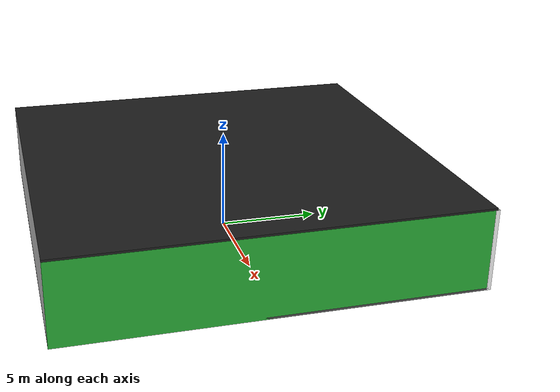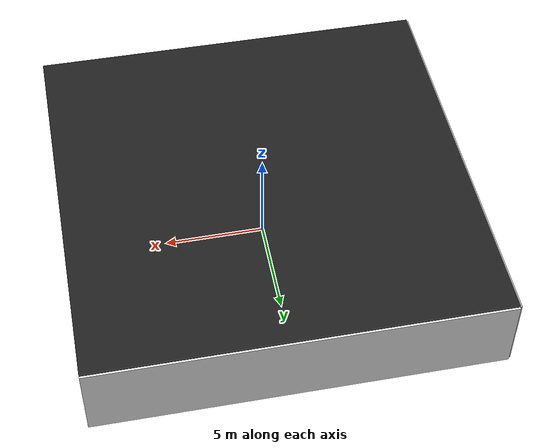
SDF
<sdf version="1.4">
 <world name="default">
  <physics type="ode">
   <max_step_size>0.001</max_step_size>
   <real_time_factor>1</real_time_factor>
   <real_time_update_rate>1000</real_time_update_rate>
   <gravity>0 0 -9.8</gravity>
  </physics>
  <scene><ambient>0.4 0.4 0.4 1</ambient><background>0.7 0.7 0.7 1</background><shadows>1</shadows></scene>
  <model name="Surrounding">
   <static>1</static>
   <link name="Ceiling">
    <collision name="Ceiling_Collision"><geometry><box><size>20 20 0.1</size></box></geometry></collision>
    <visual name="Ceiling_Visual">
     <geometry><box><size>20 20 0.1</size></box></geometry>
     <material>
      <script><uri>file://media/materials/scripts/gazebo.material</uri><name>Gazebo/Black</name></script>
     </material>
    </visual>
    <pose>0 0 4.05 0 0 0</pose>
   </link>
   <link name="Wall_South">
    <collision name="Wall_South_Collision">
     <geometry><box><size>20 0 4</size></box></geometry>
     <pose>0 0 2 0 -0 0</pose>
    </collision>
    <visual name="Wall_South_Visual">
     <pose>0 0 2 0 -0 0</pose>
     <geometry><box><size>20 0 4</size></box></geometry>
     <material>
      <script><uri>file://media/materials/scripts/gazebo.material</uri><name>Gazebo/Pioneer2Body</name></script>
     </material>
    </visual>
    <velocity_decay><linear>0</linear><angular>0</angular></velocity_decay>
    <pose>0 -10 0 0 -0 0</pose>
   </link>
   <link name="Wall_East">
    <collision name="Wall_21_Collision">
     <geometry><box><size>20 0 4</size></box></geometry>
     <pose>0 0 2 0 -0 0</pose>
    </collision>
    <visual name="Wall_21_Visual">
     <pose>0 0 2 0 -0 0</pose>
     <geometry><box><size>20 0 4</size></box></geometry>
     <material>
      <script><uri>file://media/materials/scripts/gazebo.material</uri><name>Gazebo/GreenGlow</name></script>
     </material>
    </visual>
    <velocity_decay><linear>0</linear><angular>0</angular></velocity_decay>
    <pose>10 0 0 0 -0 1.5708</pose>
   </link>
   <link name="Wall_North">
    <collision name="Wall_22_Collision">
     <geometry><box><size>20 0.2 4</size></box></geometry>
     <pose>0 0 2 0 -0 0</pose>
    </collision>
    <visual name="Wall_22_Visual">
     <pose>0 0 2 0 -0 0</pose>
     <geometry><box><size>20 0.2 4</size></box></geometry>
     <material>
      <script><uri>file://media/materials/scripts/gazebo.material</uri><name>Gazebo/White</name></script>
     </material>
    </visual>
    <velocity_decay><linear>0</linear><angular>0</angular></velocity_decay>
    <pose>0 10 0 0 -0 0</pose>
   </link>
   <link name="Wall_West">
    <collision name="Wall_23_Collision">
     <geometry><box><size>20 0.2 4</size></box></geometry>
     <pose>0 0 2 0 -0 0</pose>
    </collision>
    <visual name="Wall_23_Visual">
     <pose>0 0 2 0 -0 0</pose>
     <geometry><box><size>20 0.2 4</size></box></geometry>
     <material>
      <script><uri>file://media/materials/scripts/gazebo.material</uri><name>Gazebo/Pioneer2Body</name></script>
     </material>
    </visual>
    <velocity_decay><linear>0</linear><angular>0</angular></velocity_decay>
    <pose>-10 0 0 0 0 -1.5708</pose>
   </link>
   <link name="Ground_link">
    <collision name="collision">
     <pose>0 0 .05 0 -0 0</pose>
     <geometry><box><size>20 20 0.1</size></box></geometry>
    </collision>
    <visual name="visual">
     <pose>0 0 .05 0 -0 0</pose>
     <geometry><box><size>20 20 0.1</size></box></geometry>
     <material>
      <script><uri>file://media/materials/scripts/gazebo.material</uri><name>Gazebo/DarkGrey</name></script>
     </material>
    </visual>
   </link>
   <static>1</static>
  </model>
  <spherical_coordinates>
   <surface_model>EARTH_WGS84</surface_model>
   <latitude_deg>0</latitude_deg>
   <longitude_deg>0</longitude_deg>
   <elevation>0</elevation>
   <heading_deg>0</heading_deg>
  </spherical_coordinates>
  <light name="lightball_0" type="diffuse">
   <diffuse>0.8 0.8 0.8 1</diffuse>
   <specular>0.2 0.2 0.2 1</specular>
   <attenuation>
    <range>100</range>
    <constant>0.7</constant>
    <linear>0.01</linear>
    <quadratic>0.001</quadratic>
   </attenuation>
   <direction>-0.5 0.1 -0.9</direction>
   <pose>2.44219261156 -7.78714469726 1.19932696289 0 0 0</pose>
  </light>
  <light name="lightball_1" type="diffuse">
   <diffuse>0.8 0.8 0.8 1</diffuse>
   <specular>0.2 0.2 0.2 1</specular>
   <attenuation>
    <range>100</range>
    <constant>0.7</constant>
    <linear>0.01</linear>
    <quadratic>0.001</quadratic>
   </attenuation>
   <direction>-0.5 0.1 -0.9</direction>
   <pose>-1.39544588572 4.80010575016 2.02447459086 0 0 0</pose>
  </light>
  <light name="lightball_2" type="diffuse">
   <diffuse>0.8 0.8 0.8 1</diffuse>
   <specular>0.2 0.2 0.2 1</specular>
   <attenuation>
    <range>100</range>
    <constant>0.7</constant>
    <linear>0.01</linear>
    <quadratic>0.001</quadratic>
   </attenuation>
   <direction>-0.5 0.1 -0.9</direction>
   <pose>9.46883176384 -4.66788891923 2.09222252434 0 0 0</pose>
  </light>
  <light name="lightball_3" type="diffuse">
   <diffuse>0.8 0.8 0.8 1</diffuse>
   <specular>0.2 0.2 0.2 1</specular>
   <attenuation>
    <range>100</range>
    <constant>0.7</constant>
    <linear>0.01</linear>
    <quadratic>0.001</quadratic>
   </attenuation>
   <direction>-0.5 0.1 -0.9</direction>
   <pose>-8.58975484261 1.51657586962 1.00913522662 0 0 0</pose>
  </light>
  <light name="lightball_4" type="diffuse">
   <diffuse>0.8 0.8 0.8 1</diffuse>
   <specular>0.2 0.2 0.2 1</specular>
   <attenuation>
    <range>100</range>
    <constant>0.7</constant>
    <linear>0.01</linear>
    <quadratic>0.001</quadratic>
   </attenuation>
   <direction>-0.5 0.1 -0.9</direction>
   <pose>-7.95947495281 -9.91748546101 3.31144391869 0 0 0</pose>
  </light>
  <light name="lightball_5" type="diffuse">
   <diffuse>0.8 0.8 0.8 1</diffuse>
   <specular>0.2 0.2 0.2 1</specular>
   <attenuation>
    <range>100</range>
    <constant>0.7</constant>
    <linear>0.01</linear>
    <quadratic>0.001</quadratic>
   </attenuation>
   <direction>-0.5 0.1 -0.9</direction>
   <pose>-8.82083545405 8.95438588928 2.40521860726 0 0 0</pose>
  </light>
  <light name="lightball_6" type="diffuse">
   <diffuse>0.8 0.8 0.8 1</diffuse>
   <specular>0.2 0.2 0.2 1</specular>
   <attenuation>
    <range>100</range>
    <constant>0.7</constant>
    <linear>0.01</linear>
    <quadratic>0.001</quadratic>
   </attenuation>
   <direction>-0.5 0.1 -0.9</direction>
   <pose>8.81095878193 -2.25568558957 1.37736833422 0 0 0</pose>
  </light>
  <light name="lightball_7" type="diffuse">
   <diffuse>0.8 0.8 0.8 1</diffuse>
   <specular>0.2 0.2 0.2 1</specular>
   <attenuation>
    <range>100</range>
    <constant>0.7</constant>
    <linear>0.01</linear>
    <quadratic>0.001</quadratic>
   </attenuation>
   <direction>-0.5 0.1 -0.9</direction>
   <pose>-8.2818511174 4.68795647675 2.20452761608 0 0 0</pose>
  </light>
  <include><uri>model://cabinet</uri><pose>-8.00349185834 6.97011633557 0 0 0 2.63667579271</pose></include>
  <include>
   <uri>model://textured_shapes</uri>
   <pose>-1.79774554414 -6.85798639988 0 0 0 2.42831394467</pose>
  </include>
  <include><uri>model://table</uri><pose>0.752703371186 -7.18159957724 0 0 0 2.21471699891</pose></include>
  <include>
   <uri>model://textured_shapes</uri>
   <pose>1.1835378493 -4.24254115888 0 0 0 0.840989902139</pose>
  </include>
  <include><uri>model://cabinet</uri><pose>4.90811447165 -4.48410267209 0 0 0 1.13338505588</pose></include>
  <include><uri>model://cabinet</uri><pose>4.4081259321 8.08244871029 0 0 0 0.42662506355</pose></include>
  <include>
   <uri>model://construction_cone</uri>
   <pose>7.286757029 7.69648706465 0 0 0 1.05059111125</pose>
  </include>
 </world>
</sdf>

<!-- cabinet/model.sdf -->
<sdf version="1.5">
  <model name="cabinet">
    <static>true</static>
    <link name="cabinet_bottom_plate">
      <inertial>
        <pose>0 0 -1 0 0 0</pose>
        <inertia>
          <ixx>2.050000</ixx>
          <ixy>0</ixy>
          <ixz>0</ixz>
          <iyy>2.050000</iyy>
          <iyz>0</iyz>
          <izz>2.050000</izz>
        </inertia>
        <mass>25.000000</mass>
      </inertial>
      <collision name="cabinet_bottom_plate_geom">
        <pose>0 0 0.010000 0 0 0</pose>
        <geometry>
          <box>
            <size>0.450000 0.450000 0.020000</size>
          </box>
        </geometry>
      </collision>
      <visual name="cabinet_bottom_plate_geom_visual">
        <pose>0 0 0.010000 0 0 0</pose>
        <geometry>
          <box>
            <size>0.450000 0.450000 0.020000</size>
          </box>
        </geometry>
        <material>
          <script>
            <uri>model://media/materials/scripts/gazebo.material</uri>
            <name>Gazebo/Wood</name>
          </script>
        </material>
      </visual>
      <collision name="cabinet_bottom_plate_geom_cabinet_back_plate">
        <pose>0.235000 0 0.510000 0 0 0</pose>
        <geometry>
          <box>
            <size>0.020000 0.450000 1.020000</size>
          </box>
        </geometry>
      </collision>
      <visual name="cabinet_bottom_plate_geom_cabinet_back_plate_visual">
        <pose>0.235000 0 0.510000 0 0 0</pose>
        <geometry>
          <box>
            <size>0.020000 0.450000 1.020000</size>
          </box>
        </geometry>
        <material>
          <script>
            <uri>model://media/materials/scripts/gazebo.material</uri>
            <name>Gazebo/Wood</name>
          </script>
        </material>
      </visual>
      <collision name="cabinet_bottom_plate_geom_cabinet_left_plate">
        <pose>0 0.235000 0.510000 0 0 0</pose>
        <geometry>
          <box>
            <size>0.450000 0.020000 1.020000</size>
          </box>
        </geometry>
      </collision>
      <visual name="cabinet_bottom_plate_geom_cabinet_left_plate_visual">
        <pose>0 0.235000 0.510000 0 0 0</pose>
        <geometry>
          <box>
            <size>0.450000 0.020000 1.020000</size>
          </box>
        </geometry>
        <material>
          <script>
            <uri>model://media/materials/scripts/gazebo.material</uri>
            <name>Gazebo/Wood</name>
          </script>
        </material>
      </visual>
      <collision name="cabinet_bottom_plate_geom_cabinet_middle_plate">
        <pose>0 0 0.510000 0 0 0</pose>
        <geometry>
          <box>
            <size>0.450000 0.450000 0.020000</size>
          </box>
        </geometry>
      </collision>
      <visual name="cabinet_bottom_plate_geom_cabinet_middle_plate_visual">
        <pose>0 0 0.510000 0 0 0</pose>
        <geometry>
          <box>
            <size>0.450000 0.450000 0.020000</size>
          </box>
        </geometry>
        <material>
          <script>
            <uri>model://media/materials/scripts/gazebo.material</uri>
            <name>Gazebo/Wood</name>
          </script>
        </material>
      </visual>
      <collision name="cabinet_bottom_plate_geom_cabinet_right_plate">
        <pose>0 -0.235000 0.510000 0 0 0</pose>
        <geometry>
          <box>
            <size>0.450000 0.020000 1.020000</size>
          </box>
        </geometry>
      </collision>
      <visual name="cabinet_bottom_plate_geom_cabinet_right_plate_visual">
        <pose>0 -0.235000 0.510000 0 0 0</pose>
        <geometry>
          <box>
            <size>0.450000 0.020000 1.020000</size>
          </box>
        </geometry>
        <material>
          <script>
            <uri>model://media/materials/scripts/gazebo.material</uri>
            <name>Gazebo/Wood</name>
          </script>
        </material>
      </visual>
      <collision name="cabinet_bottom_plate_geom_cabinet_top_plate">
        <pose>0 0 1.010000 0 0 0</pose>
        <geometry>
          <box>
            <size>0.450000 0.450000 0.020000</size>
          </box>
        </geometry>
      </collision>
      <visual name="cabinet_bottom_plate_geom_cabinet_top_plate_visual">
        <pose>0 0 1.010000 0 0 0</pose>
        <geometry>
          <box>
            <size>0.450000 0.450000 0.020000</size>
          </box>
        </geometry>
        <material>
          <script>
            <uri>model://media/materials/scripts/gazebo.material</uri>
            <name>Gazebo/Wood</name>
          </script>
        </material>
      </visual>
    </link>
  </model>
</sdf>

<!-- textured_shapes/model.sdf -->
<sdf version="1.6">
  <model name="textured_shapes">
    <pose>0 0 0.5 0 0 0</pose>
    <link name="box">
      <pose>0 -1.5 0 0 0 0</pose>
      <collision name="collision">
        <geometry>
          <box>
            <size>1 1 1</size>
          </box>
        </geometry>
      </collision>
      <visual name="visual">
        <geometry>
          <box>
            <size>1 1 1</size>
          </box>
        </geometry>
        <material>
          <script>
            <uri>model://../model_source/models/textured_shapes/materials/scripts</uri>
            <uri>model://../model_source/models/textured_shapes/materials/textures</uri>
            <name>TexturedShape/Squares</name>
          </script>
        </material>
      </visual>
    </link>
    <link name="sphere">
      <collision name="collision">
        <geometry>
          <sphere>
            <radius>0.5</radius>
          </sphere>
        </geometry>
      </collision>
      <visual name="visual">
        <geometry>
          <sphere>
            <radius>0.5</radius>
          </sphere>
        </geometry>
        <material>
          <script>
            <uri>model://../model_source/models/textured_shapes/materials/scripts</uri>
            <uri>model://../model_source/models/textured_shapes/materials/textures</uri>
            <name>TexturedShape/Squares</name>
          </script>
        </material>
      </visual>
    </link>
    <link name="cylinder">
      <pose>0 1.5 0 0 0 0</pose>
      <collision name="collision">
        <geometry>
          <cylinder>
            <radius>0.5</radius>
            <length>1</length>
          </cylinder>
        </geometry>
      </collision>
      <visual name="visual">
        <geometry>
          <cylinder>
            <radius>0.5</radius>
            <length>1</length>
          </cylinder>
        </geometry>
        <material>
          <script>
            <uri>model://../model_source/models/textured_shapes/materials/scripts</uri>
            <uri>model://../model_source/models/textured_shapes/materials/textures</uri>
            <name>TexturedShape/Squares</name>
          </script>
        </material>
      </visual>
    </link>
  </model>
</sdf>

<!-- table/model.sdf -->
<sdf version="1.5">
  <model name="table">
    <static>true</static>
    <link name="link">
      <collision name="surface">
        <pose>0 0 1.0 0 0 0</pose>
        <geometry>
          <box>
            <size>1.5 0.8 0.03</size>
          </box>
        </geometry>
        <surface>
          <friction>
            <ode>
              <mu>0.6</mu>
              <mu2>0.6</mu2>
            </ode>
          </friction>
        </surface>
      </collision>
      <visual name="visual1">
        <pose>0 0 1.0 0 0 0</pose>
        <geometry>
          <box>
            <size>1.5 0.8 0.03</size>
          </box>
        </geometry>
        <material>
          <script>
            <uri>model://media/materials/scripts/gazebo.material</uri>
            <name>Gazebo/Wood</name>
          </script>
        </material>
      </visual>
      <collision name="front_left_leg">
        <pose>0.68 0.38 0.5 0 0 0</pose>
        <geometry>
          <cylinder>
            <radius>0.02</radius>
            <length>1.0</length>
          </cylinder>
        </geometry>
      </collision>
      <visual name="front_left_leg">
        <pose>0.68 0.38 0.5 0 0 0</pose>
        <geometry>
          <cylinder>
            <radius>0.02</radius>
            <length>1.0</length>
          </cylinder>
        </geometry>
        <material>
          <script>
            <uri>model://media/materials/scripts/gazebo.material</uri>
            <name>Gazebo/Grey</name>
          </script>
        </material>
      </visual>
      <collision name="front_right_leg">
        <pose>0.68 -0.38 0.5 0 0 0</pose>
        <geometry>
          <cylinder>
            <radius>0.02</radius>
            <length>1.0</length>
          </cylinder>
        </geometry>
      </collision>
      <visual name="front_right_leg">
        <pose>0.68 -0.38 0.5 0 0 0</pose>
        <geometry>
          <cylinder>
            <radius>0.02</radius>
            <length>1.0</length>
          </cylinder>
        </geometry>
        <material>
          <script>
            <uri>model://media/materials/scripts/gazebo.material</uri>
            <name>Gazebo/Grey</name>
          </script>
        </material>
      </visual>
      <collision name="back_right_leg">
        <pose>-0.68 -0.38 0.5 0 0 0</pose>
        <geometry>
          <cylinder>
            <radius>0.02</radius>
            <length>1.0</length>
          </cylinder>
        </geometry>
      </collision>
      <visual name="back_right_leg">
        <pose>-0.68 -0.38 0.5 0 0 0</pose>
        <geometry>
          <cylinder>
            <radius>0.02</radius>
            <length>1.0</length>
          </cylinder>
        </geometry>
        <material>
          <script>
            <uri>model://media/materials/scripts/gazebo.material</uri>
            <name>Gazebo/Grey</name>
          </script>
        </material>
      </visual>
      <collision name="back_left_leg">
        <pose>-0.68 0.38 0.5 0 0 0</pose>
        <geometry>
          <cylinder>
            <radius>0.02</radius>
            <length>1.0</length>
          </cylinder>
        </geometry>
      </collision>
      <visual name="back_left_leg">
        <pose>-0.68 0.38 0.5 0 0 0</pose>
        <geometry>
          <cylinder>
            <radius>0.02</radius>
            <length>1.0</length>
          </cylinder>
        </geometry>
        <material>
          <script>
            <uri>model://media/materials/scripts/gazebo.material</uri>
            <name>Gazebo/Grey</name>
          </script>
        </material>
      </visual>
    </link>
  </model>
</sdf>

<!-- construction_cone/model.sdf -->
<sdf version="1.5">
  <model name="Construction Cone">
    <link name="link">
      <collision name="collision">
        <geometry>
          <mesh>
            <scale>10 10 10</scale>
            <uri>file://isr-testbed/construction_cone/meshes/construction_cone.dae</uri>
          </mesh>
        </geometry>
      </collision>
      <visual name="visual">
        <geometry>
          <mesh>
            <scale>10 10 10</scale>
            <uri>file://isr-testbed/construction_cone/meshes/construction_cone.dae</uri>
          </mesh>
        </geometry>
      </visual>
    </link>
  </model>
</sdf>
